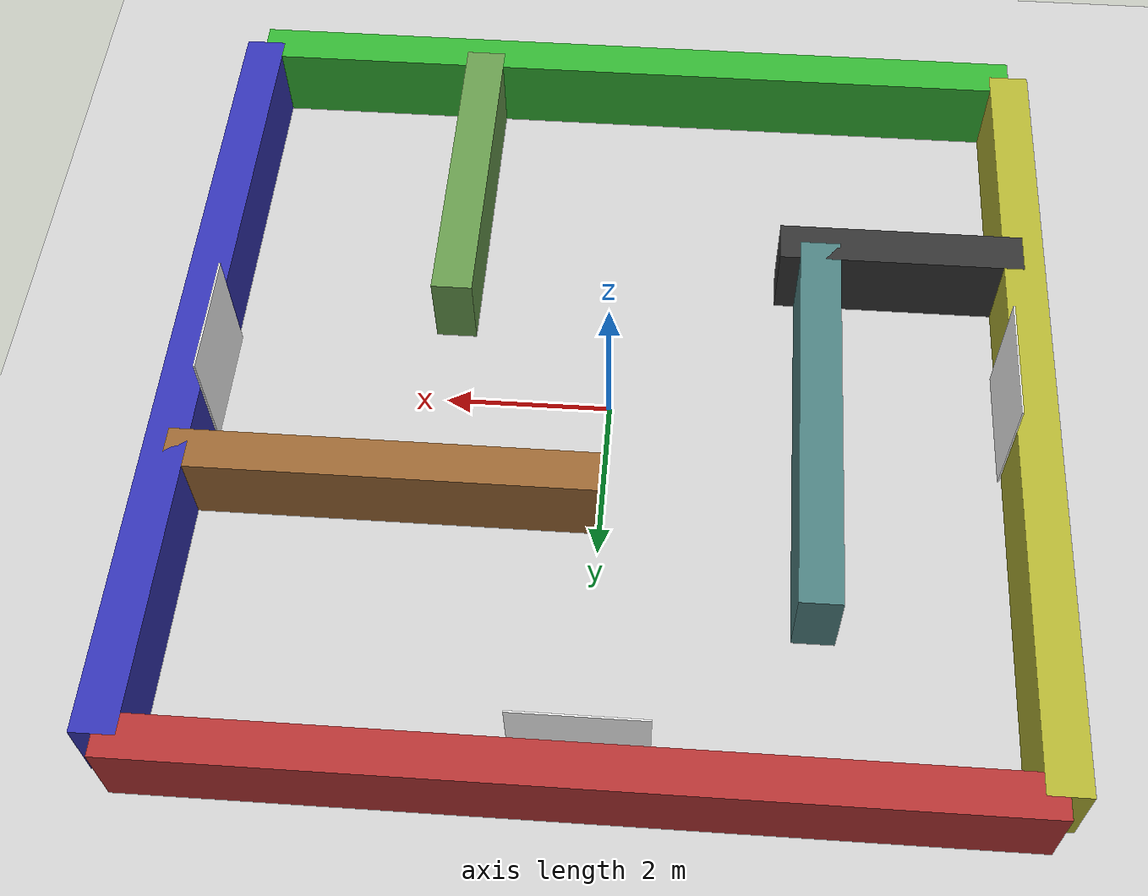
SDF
<?xml version="1.0" ?>
<sdf version="1.8">
  <world name="maze">
    <scene>
      <grid>false</grid>
    </scene>
    <physics name="10ms" type="ignored">
      <max_step_size>0.01</max_step_size>
      <real_time_factor>1.0</real_time_factor>
      <dart>
        <collision_detector>bullet</collision_detector>
      </dart>
    </physics>

    <plugin
      filename="ignition-gazebo-physics-system"
      name="ignition::gazebo::systems::Physics">
    </plugin>
    <plugin
      filename="ignition-gazebo-sensors-system"
      name="ignition::gazebo::systems::Sensors">
      <render_engine>ogre2</render_engine>
    </plugin>
    <plugin
      filename="ignition-gazebo-scene-broadcaster-system"
      name="ignition::gazebo::systems::SceneBroadcaster">
    </plugin>
    <plugin
      filename="ignition-gazebo-user-commands-system"
      name="ignition::gazebo::systems::UserCommands">
    </plugin>

    <!-- imu plugin -->
    <plugin
      filename="libignition-gazebo-imu-system.so"
      name="ignition::gazebo::systems::Imu">
    </plugin>

    <!-- Map Creator plugin (standalone package) -->

    <light name="sun" type="directional">
      <cast_shadows>true</cast_shadows>
      <pose>0 0 10 0 0 0</pose>
      <diffuse>0.8 0.8 0.8 1</diffuse>
      <specular>0.2 0.2 0.2 1</specular>
      <attenuation>
        <range>1000</range>
        <constant>0.9</constant>
        <linear>0.01</linear>
        <quadratic>0.001</quadratic>
      </attenuation>
      <direction>-0.5 0.1 -0.9</direction>
    </light>

    <model name='ground_plane'>
      <static>true</static>
      <link name='link'>
        <collision name='collision'>
          <geometry>
            <plane>
              <normal>0 0 1</normal>
              <size>100 100</size>
            </plane>
          </geometry>
        </collision>
        <visual name='visual'>
          <geometry>
            <plane>
              <normal>0 0 1</normal>
              <size>100 100</size>
            </plane>
          </geometry>
          <material>
            <ambient>0.8 0.8 0.8 1</ambient>
            <diffuse>0.8 0.8 0.8 1</diffuse>
            <specular>0.8 0.8 0.8 1</specular>
          </material>
        </visual>
      </link>
      <pose>0 0 0 0 0 0</pose>
    </model>

    <!-- Maze Model -->
    <model name="maze">
      <static>true</static>

      <!-- Outer walls label -->
      <plugin filename="ignition-gazebo-label-system" name="ignition::gazebo::systems::Label">
        <label>100</label>
      </plugin>

      <link name="wall_1">
        <collision name="collision">
          <geometry>
            <box>
              <size>10 0.5 1</size>
            </box>
          </geometry>
        </collision>
        <visual name="visual">
          <geometry>
            <box>
              <size>10 0.5 1</size>
            </box>
          </geometry>
          <material>
            <ambient>0.7 0.2 0.2 1</ambient>
            <diffuse>0.7 0.2 0.2 1</diffuse>
          </material>
        </visual>
        <pose>0 5 0.5 0 0 0</pose>
      </link>

      <link name="wall_2">
        <collision name="collision">
          <geometry>
            <box>
              <size>0.5 10 1</size>
            </box>
          </geometry>
        </collision>
        <visual name="visual">
          <geometry>
            <box>
              <size>0.5 10 1</size>
            </box>
          </geometry>
          <material>
            <ambient>0.2 0.2 0.7 1</ambient>
            <diffuse>0.2 0.2 0.7 1</diffuse>
          </material>
        </visual>
        <pose>5 0 0.5 0 0 0</pose>
      </link>

      <link name="wall_3">
        <collision name="collision">
          <geometry>
            <box>
              <size>10 0.5 1</size>
            </box>
          </geometry>
        </collision>
        <visual name="visual">
          <geometry>
            <box>
              <size>10 0.5 1</size>
            </box>
          </geometry>
          <material>
            <ambient>0.2 0.7 0.2 1</ambient>
            <diffuse>0.2 0.7 0.2 1</diffuse>
          </material>
        </visual>
        <pose>0 -5 0.5 0 0 0</pose>
      </link>

      <link name="wall_4">
        <collision name="collision">
          <geometry>
            <box>
              <size>0.5 10 1</size>
            </box>
          </geometry>
        </collision>
        <visual name="visual">
          <geometry>
            <box>
              <size>0.5 10 1</size>
            </box>
          </geometry>
          <material>
            <ambient>0.7 0.7 0.2 1</ambient>
            <diffuse>0.7 0.7 0.2 1</diffuse>
          </material>
        </visual>
        <pose>-5 0 0.5 0 0 0</pose>
      </link>
    </model>

    <!-- Inner walls - separate models for different labels -->
    <model name="maze_inner_wall_1">
      <static>true</static>
      <plugin filename="ignition-gazebo-label-system" name="ignition::gazebo::systems::Label">
        <label>200</label>
      </plugin>
      <link name="link">
        <collision name="collision">
          <geometry>
            <box>
              <size>0.5 5 1</size>
            </box>
          </geometry>
        </collision>
        <visual name="visual">
          <geometry>
            <box>
              <size>0.5 5 1</size>
            </box>
          </geometry>
          <material>
            <ambient>0.3 0.5 0.5 1</ambient>
            <diffuse>0.3 0.5 0.5 1</diffuse>
          </material>
        </visual>
        <pose>-2.5 0.5 0.5 0 0 0</pose>
      </link>
    </model>

    <model name="maze_inner_wall_2">
      <static>true</static>
      <plugin filename="ignition-gazebo-label-system" name="ignition::gazebo::systems::Label">
        <label>200</label>
      </plugin>
      <link name="link">
        <collision name="collision">
          <geometry>
            <box>
              <size>5 0.5 1</size>
            </box>
          </geometry>
        </collision>
        <visual name="visual">
          <geometry>
            <box>
              <size>5 0.5 1</size>
            </box>
          </geometry>
          <material>
            <ambient>0.6 0.4 0.2 1</ambient>
            <diffuse>0.6 0.4 0.2 1</diffuse>
          </material>
        </visual>
        <pose>2.5 1.5 0.5 0 0 0</pose>
      </link>
    </model>

    <model name="maze_inner_wall_3">
      <static>true</static>
      <plugin filename="ignition-gazebo-label-system" name="ignition::gazebo::systems::Label">
        <label>200</label>
      </plugin>
      <link name="link">
        <collision name="collision">
          <geometry>
            <box>
              <size>0.5 4 1</size>
            </box>
          </geometry>
        </collision>
        <visual name="visual">
          <geometry>
            <box>
              <size>0.5 4 1</size>
            </box>
          </geometry>
          <material>
            <ambient>0.4 0.6 0.3 1</ambient>
            <diffuse>0.4 0.6 0.3 1</diffuse>
          </material>
        </visual>
        <pose>2 -3 0.5 0 0 0</pose>
      </link>
    </model>

    <model name="maze_inner_wall_4">
      <static>true</static>
      <plugin filename="ignition-gazebo-label-system" name="ignition::gazebo::systems::Label">
        <label>200</label>
      </plugin>
      <link name="link">
        <collision name="collision">
          <geometry>
            <box>
              <size>3 0.5 1</size>
            </box>
          </geometry>
        </collision>
        <visual name="visual">
          <geometry>
            <box>
              <size>3 0.5 1</size>
            </box>
          </geometry>
          <material>
            <ambient>0.2 0.2 0.2 1</ambient>
            <diffuse>0.2 0.2 0.2 1</diffuse>
          </material>
        </visual>
        <pose>-3.5 -2 0.5 0 0 0</pose>
      </link>
    </model>
  <!-- Stop sign poster -->
  <include>
    <uri>model://stop_sign_poster</uri>
    <name>stop_sign_1</name>
    <pose>-4.7 0.0 0.8 0 0 -1.57</pose>
  </include>

  <!-- Fast sign poster -->
  <include>
    <uri>model://fast_sign_poster</uri>
    <name>fast_sign_1</name>
    <pose>0.0 4.7 0.8 0 0 0</pose>
  </include>

  <!-- Slow sign poster -->
  <include>
    <uri>model://slow_sign_poster</uri>
    <name>slow_sign_1</name>
    <pose>4.7 0.0 0.8 0 0 1.57</pose>
  </include>
  </world>
</sdf>

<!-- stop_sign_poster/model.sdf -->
<sdf version="1.8">
  <model name="stop_sign_poster">
    <static>true</static>
    <link name="poster_link">
      <visual name="visual">
        <geometry>
          <box>
            <size>1.5 0.02 1.5</size>
          </box>
        </geometry>
        <material>
          <diffuse>1 1 1 1</diffuse>
          <pbr>
            <metal>
              <albedo_map>materials/textures/stop_sign.png</albedo_map>
            </metal>
          </pbr>
        </material>
      </visual>
      <collision name="collision">
        <geometry>
          <box>
            <size>1.5 0.02 1.5</size>
          </box>
        </geometry>
      </collision>
    </link>
  </model>
</sdf>

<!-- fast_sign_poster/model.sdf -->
<sdf version="1.8">
  <model name="fast_sign_poster">
    <static>true</static>
    <link name="poster_link">
      <visual name="visual">
        <geometry>
          <box>
            <size>1.5 0.02 1.5</size>
          </box>
        </geometry>
        <material>
          <diffuse>1 1 1 1</diffuse>
          <pbr>
            <metal>
              <albedo_map>materials/textures/fast_sign.png</albedo_map>
            </metal>
          </pbr>
        </material>
      </visual>
      <collision name="collision">
        <geometry>
          <box>
            <size>1.5 0.02 1.5</size>
          </box>
        </geometry>
      </collision>
    </link>
  </model>
</sdf>

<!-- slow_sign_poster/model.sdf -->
<sdf version="1.8">
  <model name="slow_sign_poster">
    <static>true</static>
    <link name="poster_link">
      <visual name="visual">
        <geometry>
          <box>
            <size>1.5 0.02 1.5</size>
          </box>
        </geometry>
        <material>
          <diffuse>1 1 1 1</diffuse>
          <pbr>
            <metal>
              <albedo_map>materials/textures/slow_sign.png</albedo_map>
            </metal>
          </pbr>
        </material>
      </visual>
      <collision name="collision">
        <geometry>
          <box>
            <size>1.5 0.02 1.5</size>
          </box>
        </geometry>
      </collision>
    </link>
  </model>
</sdf>
